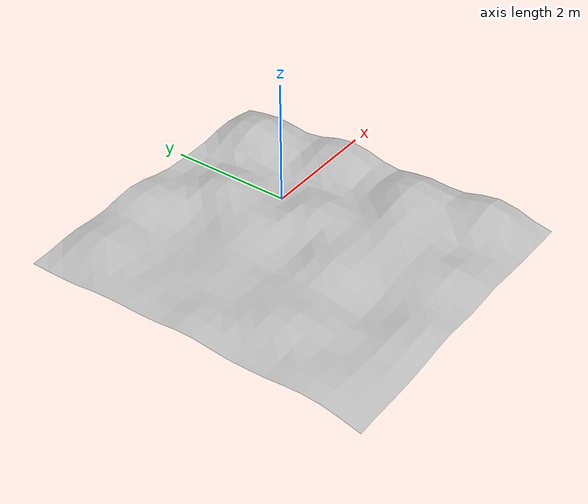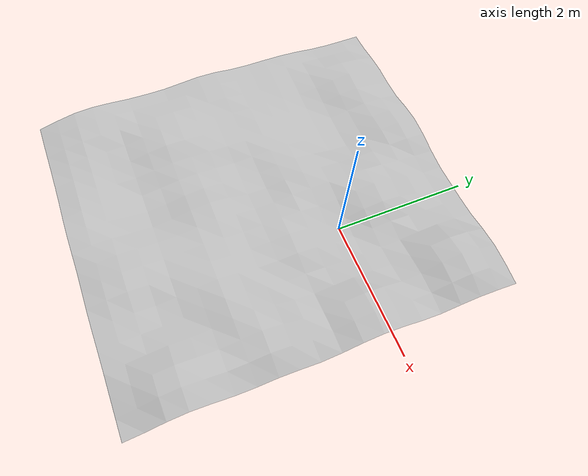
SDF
<?xml version="1.0" ?>
<sdf version="1.6">
  <model name="uneven_surface">
    <static>1</static>
    <link name="link">
      <inertial>
        <mass>1.0</mass>
        <inertia>
          <ixx>0.001</ixx>
          <ixy>0.0</ixy>
          <ixz>0.0</ixz>
          <iyy>0.001</iyy>
          <iyz>0.0</iyz>
          <izz>0.001</izz>
        </inertia>
      </inertial>
      <collision name="collision">
        <geometry>
          <mesh>
            <uri>model://uneven_surface/meshes/model.dae</uri>
            <scale>1 1 1</scale>
          </mesh>
        </geometry>
        <surface>
          <friction>
            <ode>
              <mu>0.6</mu>
              <mu2>0.6</mu2>
            </ode>
          </friction>
        </surface>
      </collision>
      <visual name="visual">
        <geometry>
          <mesh>
            <uri>model://uneven_surface/meshes/model.dae</uri>
            <scale>1 1 1</scale>
          </mesh>
        </geometry>
      </visual>
    </link>
  </model>
</sdf>
